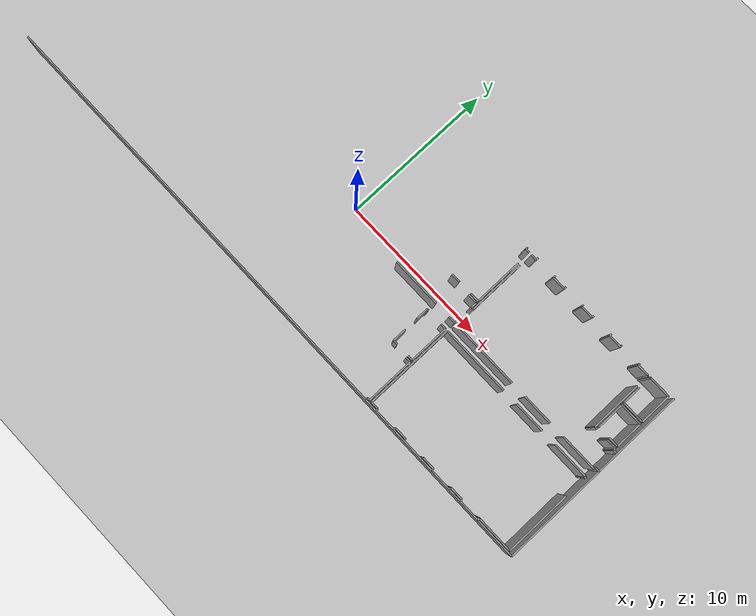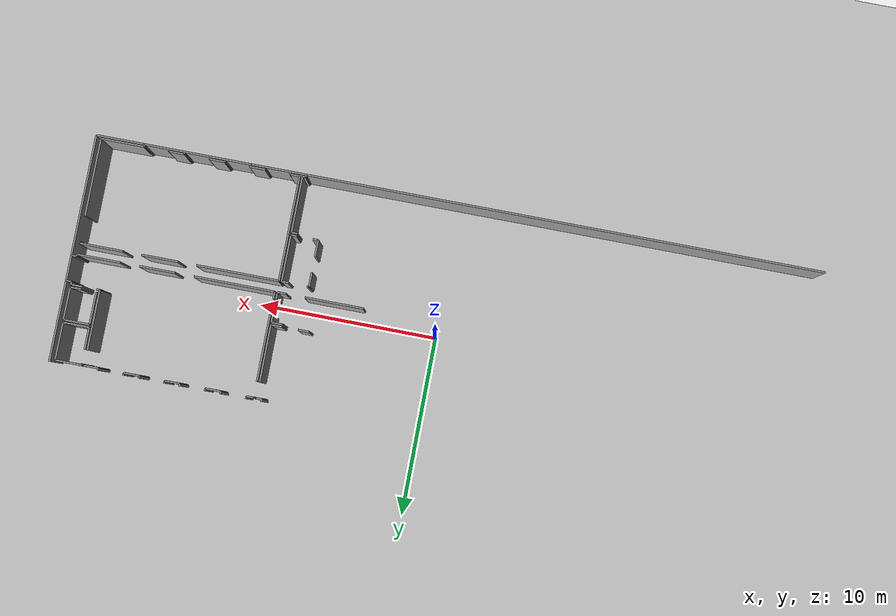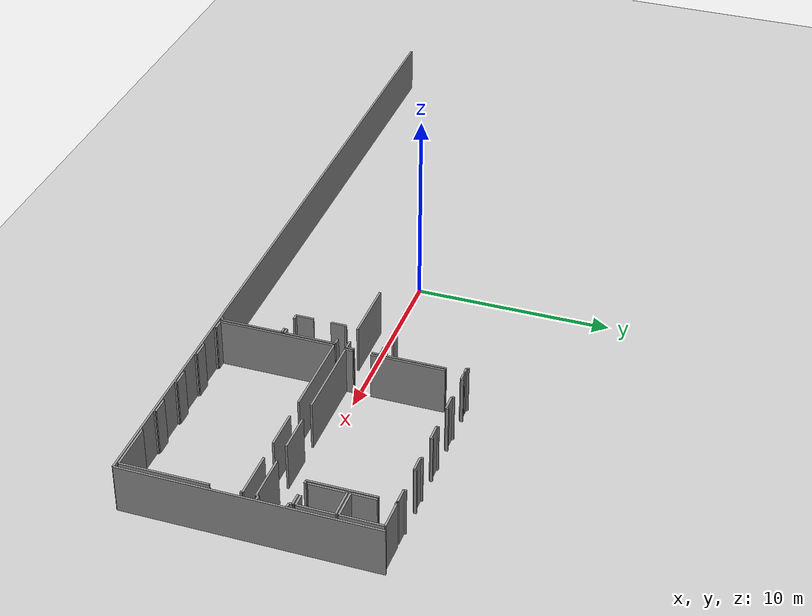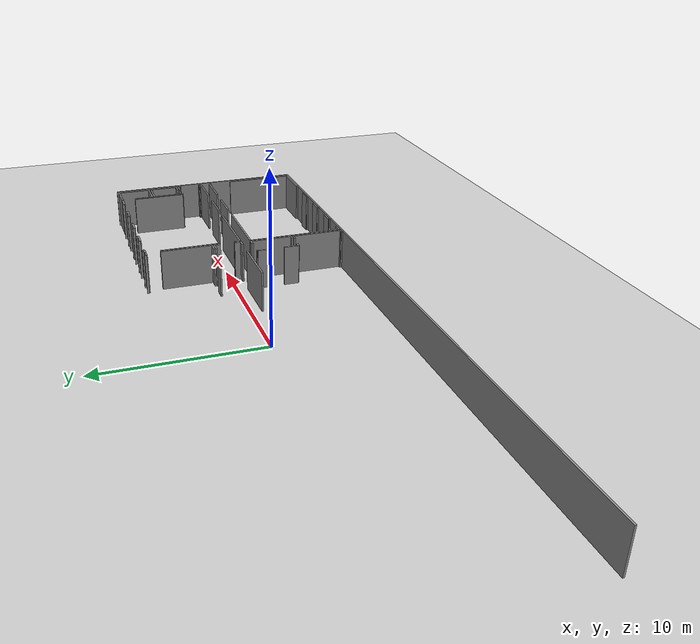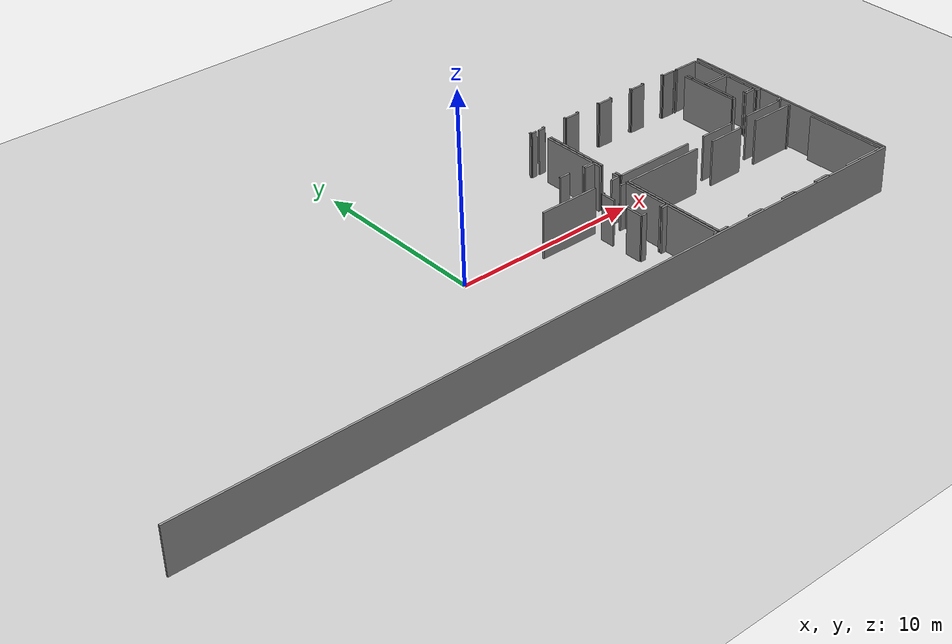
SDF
<sdf version="1.6">
 <world name="default">
  <model name="ground_plane">
   <static>1</static>
   <link name="link">
    <collision name="collision">
     <geometry><plane><normal>0 0 1</normal><size>100 100</size></plane></geometry>
     <surface><friction><ode><mu>100</mu><mu2>50</mu2></ode></friction></surface>
    </collision>
    <visual name="visual">
     <cast_shadows>0</cast_shadows>
     <geometry><plane><normal>0 0 1</normal><size>100 100</size></plane></geometry>
     <material>
      <script><uri>file://media/materials/scripts/gazebo.material</uri><name>Gazebo/Grey</name></script>
     </material>
    </visual>
   </link>
  </model>
  <model name="0510025537_Layout1_PLAN3">
   <static>1</static>
   <link name="Wall_123">
    <collision name="Wall_123_Collision">
     <geometry><box><size>0.400330431467 0.1 2.5</size></box></geometry>
     <pose>0.200165215734 0 1.25 0 0 0</pose>
    </collision>
    <visual name="Wall_123_Visual">
     <pose>0.200165215734 0 1.25 0 0 0</pose>
     <geometry><box><size>0.400330431467 0.1 2.5</size></box></geometry>
     <material>
      <script><uri>file://media/materials/scripts/gazebo.material</uri><name>Gazebo/Grey</name></script>
      <ambient>1 1 1 1</ambient>
     </material>
    </visual>
    <pose>29.1427019127 -5.60791764631 0 0 0 -1.57079632679</pose>
   </link>
   <link name="Wall_124">
    <collision name="Wall_124_Collision">
     <geometry><box><size>0.479633983606 0.1 2.5</size></box></geometry>
     <pose>0.239816991803 0 1.25 0 0 0</pose>
    </collision>
    <visual name="Wall_124_Visual">
     <pose>0.239816991803 0 1.25 0 0 0</pose>
     <geometry><box><size>0.479633983606 0.1 2.5</size></box></geometry>
     <material>
      <script><uri>file://media/materials/scripts/gazebo.material</uri><name>Gazebo/Grey</name></script>
      <ambient>1 1 1 1</ambient>
     </material>
    </visual>
    <pose>29.1427019127 -6.00824807778 0 0 0 3.14159265359</pose>
   </link>
   <link name="Wall_125">
    <collision name="Wall_125_Collision">
     <geometry><box><size>3.24966639131 0.1 2.5</size></box></geometry>
     <pose>1.62483319565 0 1.25 0 0 0</pose>
    </collision>
    <visual name="Wall_125_Visual">
     <pose>1.62483319565 0 1.25 0 0 0</pose>
     <geometry><box><size>3.24966639131 0.1 2.5</size></box></geometry>
     <material>
      <script><uri>file://media/materials/scripts/gazebo.material</uri><name>Gazebo/Grey</name></script>
      <ambient>1 1 1 1</ambient>
     </material>
    </visual>
    <pose>27.6212556396 -6.00824807778 0 0 0 3.14159265359</pose>
   </link>
   <link name="Wall_141">
    <collision name="Wall_141_Collision">
     <geometry><box><size>0.629916756688 0.1 2.5</size></box></geometry>
     <pose>0.314958378344 0 1.25 0 0 0</pose>
    </collision>
    <visual name="Wall_141_Visual">
     <pose>0.314958378344 0 1.25 0 0 0</pose>
     <geometry><box><size>0.629916756688 0.1 2.5</size></box></geometry>
     <material>
      <script><uri>file://media/materials/scripts/gazebo.material</uri><name>Gazebo/Grey</name></script>
      <ambient>1 1 1 1</ambient>
     </material>
    </visual>
    <pose>28.5210459427 -4.32654254305 0 0 0 0.0</pose>
   </link>
   <link name="Wall_142">
    <collision name="Wall_142_Collision">
     <geometry><box><size>0.403274551538 0.1 2.5</size></box></geometry>
     <pose>0.201637275769 0 1.25 0 0 0</pose>
    </collision>
    <visual name="Wall_142_Visual">
     <pose>0.201637275769 0 1.25 0 0 0</pose>
     <geometry><box><size>0.403274551538 0.1 2.5</size></box></geometry>
     <material>
      <script><uri>file://media/materials/scripts/gazebo.material</uri><name>Gazebo/Grey</name></script>
      <ambient>1 1 1 1</ambient>
     </material>
    </visual>
    <pose>29.1509626994 -4.32654254305 0 0 0 -1.59128203429</pose>
   </link>
   <link name="Wall_192">
    <collision name="Wall_192_Collision">
     <geometry><box><size>0.621274702929 0.1 2.5</size></box></geometry>
     <pose>0.310637351465 0 1.25 0 0 0</pose>
    </collision>
    <visual name="Wall_192_Visual">
     <pose>0.310637351465 0 1.25 0 0 0</pose>
     <geometry><box><size>0.621274702929 0.1 2.5</size></box></geometry>
     <material>
      <script><uri>file://media/materials/scripts/gazebo.material</uri><name>Gazebo/Grey</name></script>
      <ambient>1 1 1 1</ambient>
     </material>
    </visual>
    <pose>29.1489928195 -4.20485480079 0 0 0 3.14159265359</pose>
   </link>
   <link name="Wall_193">
    <collision name="Wall_193_Collision">
     <geometry><box><size>0.601639448434 0.1 2.5</size></box></geometry>
     <pose>0.300819724217 0 1.25 0 0 0</pose>
    </collision>
    <visual name="Wall_193_Visual">
     <pose>0.300819724217 0 1.25 0 0 0</pose>
     <geometry><box><size>0.601639448434 0.1 2.5</size></box></geometry>
     <material>
      <script><uri>file://media/materials/scripts/gazebo.material</uri><name>Gazebo/Grey</name></script>
      <ambient>1 1 1 1</ambient>
     </material>
    </visual>
    <pose>27.6344728983 -4.20485480079 0 0 0 3.14159265359</pose>
   </link>
   <link name="Wall_197">
    <collision name="Wall_197_Collision">
     <geometry><box><size>0.132128105738 0.1 2.5</size></box></geometry>
     <pose>0.066064052869 0 1.25 0 0 0</pose>
    </collision>
    <visual name="Wall_197_Visual">
     <pose>0.066064052869 0 1.25 0 0 0</pose>
     <geometry><box><size>0.132128105738 0.1 2.5</size></box></geometry>
     <material>
      <script><uri>file://media/materials/scripts/gazebo.material</uri><name>Gazebo/Grey</name></script>
      <ambient>1 1 1 1</ambient>
     </material>
    </visual>
    <pose>28.8434708013 -0.00852767363538 0 0 0 -1.57079632679</pose>
   </link>
   <link name="Wall_198">
    <collision name="Wall_198_Collision">
     <geometry><box><size>0.296689330876 0.1 2.5</size></box></geometry>
     <pose>0.148344665438 0 1.25 0 0 0</pose>
    </collision>
    <visual name="Wall_198_Visual">
     <pose>0.148344665438 0 1.25 0 0 0</pose>
     <geometry><box><size>0.296689330876 0.1 2.5</size></box></geometry>
     <material>
      <script><uri>file://media/materials/scripts/gazebo.material</uri><name>Gazebo/Grey</name></script>
      <ambient>1 1 1 1</ambient>
     </material>
    </visual>
    <pose>28.8434708013 -0.140655779373 0 0 0 0.0</pose>
   </link>
   <link name="Wall_199">
    <collision name="Wall_199_Collision">
     <geometry><box><size>3.17810212601 0.1 2.5</size></box></geometry>
     <pose>1.58905106301 0 1.25 0 0 0</pose>
    </collision>
    <visual name="Wall_199_Visual">
     <pose>1.58905106301 0 1.25 0 0 0</pose>
     <geometry><box><size>3.17810212601 0.1 2.5</size></box></geometry>
     <material>
      <script><uri>file://media/materials/scripts/gazebo.material</uri><name>Gazebo/Grey</name></script>
      <ambient>1 1 1 1</ambient>
     </material>
    </visual>
    <pose>29.1401601322 -1.02676494885 0 0 0 -1.56801708991</pose>
   </link>
   <link name="Wall_200">
    <collision name="Wall_200_Collision">
     <geometry><box><size>0.291987036919 0.1 2.5</size></box></geometry>
     <pose>0.14599351846 0 1.25 0 0 0</pose>
    </collision>
    <visual name="Wall_200_Visual">
     <pose>0.14599351846 0 1.25 0 0 0</pose>
     <geometry><box><size>0.291987036919 0.1 2.5</size></box></geometry>
     <material>
      <script><uri>file://media/materials/scripts/gazebo.material</uri><name>Gazebo/Grey</name></script>
      <ambient>1 1 1 1</ambient>
     </material>
    </visual>
    <pose>40.5779182818 -5.8933595984 0 0 0 3.14159265359</pose>
   </link>
   <link name="Wall_201">
    <collision name="Wall_201_Collision">
     <geometry><box><size>0.112791510453 0.1 2.5</size></box></geometry>
     <pose>0.0563957552265 0 1.25 0 0 0</pose>
    </collision>
    <visual name="Wall_201_Visual">
     <pose>0.0563957552265 0 1.25 0 0 0</pose>
     <geometry><box><size>0.112791510453 0.1 2.5</size></box></geometry>
     <material>
      <script><uri>file://media/materials/scripts/gazebo.material</uri><name>Gazebo/Grey</name></script>
      <ambient>1 1 1 1</ambient>
     </material>
    </visual>
    <pose>40.2859312448 -5.8933595984 0 0 0 -1.57079632679</pose>
   </link>
   <link name="Wall_202">
    <collision name="Wall_202_Collision">
     <geometry><box><size>2.40242740039 0.1 2.5</size></box></geometry>
     <pose>1.2012137002 0 1.25 0 0 0</pose>
    </collision>
    <visual name="Wall_202_Visual">
     <pose>1.2012137002 0 1.25 0 0 0</pose>
     <geometry><box><size>2.40242740039 0.1 2.5</size></box></geometry>
     <material>
      <script><uri>file://media/materials/scripts/gazebo.material</uri><name>Gazebo/Grey</name></script>
      <ambient>1 1 1 1</ambient>
     </material>
    </visual>
    <pose>40.2859312448 -6.00615110885 0 0 0 3.14159265359</pose>
   </link>
   <link name="Wall_203">
    <collision name="Wall_203_Collision">
     <geometry><box><size>1.98398678274 0.1 2.5</size></box></geometry>
     <pose>0.991993391371 0 1.25 0 0 0</pose>
    </collision>
    <visual name="Wall_203_Visual">
     <pose>0.991993391371 0 1.25 0 0 0</pose>
     <geometry><box><size>1.98398678274 0.1 2.5</size></box></geometry>
     <material>
      <script><uri>file://media/materials/scripts/gazebo.material</uri><name>Gazebo/Grey</name></script>
      <ambient>1 1 1 1</ambient>
     </material>
    </visual>
    <pose>36.8153205821 -6.00615110885 0 0 0 3.14159265359</pose>
   </link>
   <link name="Wall_204">
    <collision name="Wall_204_Collision">
     <geometry><box><size>4.48624261295 0.1 2.5</size></box></geometry>
     <pose>2.24312130648 0 1.25 0 0 0</pose>
    </collision>
    <visual name="Wall_204_Visual">
     <pose>2.24312130648 0 1.25 0 0 0</pose>
     <geometry><box><size>4.48624261295 0.1 2.5</size></box></geometry>
     <material>
      <script><uri>file://media/materials/scripts/gazebo.material</uri><name>Gazebo/Grey</name></script>
      <ambient>1 1 1 1</ambient>
     </material>
    </visual>
    <pose>33.7784012201 -6.00615110885 0 0 0 3.14159265359</pose>
   </link>
   <link name="Wall_205">
    <collision name="Wall_205_Collision">
     <geometry><box><size>0.385524559954 0.1 2.5</size></box></geometry>
     <pose>0.192762279977 0 1.25 0 0 0</pose>
    </collision>
    <visual name="Wall_205_Visual">
     <pose>0.192762279977 0 1.25 0 0 0</pose>
     <geometry><box><size>0.385524559954 0.1 2.5</size></box></geometry>
     <material>
      <script><uri>file://media/materials/scripts/gazebo.material</uri><name>Gazebo/Grey</name></script>
      <ambient>1 1 1 1</ambient>
     </material>
    </visual>
    <pose>29.2921586071 -6.00615110885 0 0 0 1.57079632679</pose>
   </link>
   <link name="Wall_206">
    <collision name="Wall_206_Collision">
     <geometry><box><size>3.69760437186 0.1 2.5</size></box></geometry>
     <pose>1.84880218593 0 1.25 0 0 0</pose>
    </collision>
    <visual name="Wall_206_Visual">
     <pose>1.84880218593 0 1.25 0 0 0</pose>
     <geometry><box><size>3.69760437186 0.1 2.5</size></box></geometry>
     <material>
      <script><uri>file://media/materials/scripts/gazebo.material</uri><name>Gazebo/Grey</name></script>
      <ambient>1 1 1 1</ambient>
     </material>
    </visual>
    <pose>29.2921586071 -4.73068564529 0 0 0 1.57079632679</pose>
   </link>
   <link name="Wall_207">
    <collision name="Wall_207_Collision">
     <geometry><box><size>0.401029421109 0.1 2.5</size></box></geometry>
     <pose>0.200514710555 0 1.25 0 0 0</pose>
    </collision>
    <visual name="Wall_207_Visual">
     <pose>0.200514710555 0 1.25 0 0 0</pose>
     <geometry><box><size>0.401029421109 0.1 2.5</size></box></geometry>
     <material>
      <script><uri>file://media/materials/scripts/gazebo.material</uri><name>Gazebo/Grey</name></script>
      <ambient>1 1 1 1</ambient>
     </material>
    </visual>
    <pose>29.2921586071 -0.139003622037 0 0 0 0.0</pose>
   </link>
   <link name="Wall_208">
    <collision name="Wall_208_Collision">
     <geometry><box><size>0.139003622037 0.1 2.5</size></box></geometry>
     <pose>0.0695018110186 0 1.25 0 0 0</pose>
    </collision>
    <visual name="Wall_208_Visual">
     <pose>0.0695018110186 0 1.25 0 0 0</pose>
     <geometry><box><size>0.139003622037 0.1 2.5</size></box></geometry>
     <material>
      <script><uri>file://media/materials/scripts/gazebo.material</uri><name>Gazebo/Grey</name></script>
      <ambient>1 1 1 1</ambient>
     </material>
    </visual>
    <pose>29.6931880282 -0.139003622037 0 0 0 1.57079632679</pose>
   </link>
   <link name="Wall_209">
    <collision name="Wall_209_Collision">
     <geometry><box><size>0.139003622037 0.1 2.5</size></box></geometry>
     <pose>0.0695018110186 0 1.25 0 0 0</pose>
    </collision>
    <visual name="Wall_209_Visual">
     <pose>0.0695018110186 0 1.25 0 0 0</pose>
     <geometry><box><size>0.139003622037 0.1 2.5</size></box></geometry>
     <material>
      <script><uri>file://media/materials/scripts/gazebo.material</uri><name>Gazebo/Grey</name></script>
      <ambient>1 1 1 1</ambient>
     </material>
    </visual>
    <pose>31.0990468323 -0.0 0 0 0 -1.57079632679</pose>
   </link>
   <link name="Wall_210">
    <collision name="Wall_210_Collision">
     <geometry><box><size>0.862489674017 0.1 2.5</size></box></geometry>
     <pose>0.431244837008 0 1.25 0 0 0</pose>
    </collision>
    <visual name="Wall_210_Visual">
     <pose>0.431244837008 0 1.25 0 0 0</pose>
     <geometry><box><size>0.862489674017 0.1 2.5</size></box></geometry>
     <material>
      <script><uri>file://media/materials/scripts/gazebo.material</uri><name>Gazebo/Grey</name></script>
      <ambient>1 1 1 1</ambient>
     </material>
    </visual>
    <pose>31.0990468323 -0.139003622037 0 0 0 0.0</pose>
   </link>
   <link name="Wall_211">
    <collision name="Wall_211_Collision">
     <geometry><box><size>0.132687297452 0.1 2.5</size></box></geometry>
     <pose>0.0663436487259 0 1.25 0 0 0</pose>
    </collision>
    <visual name="Wall_211_Visual">
     <pose>0.0663436487259 0 1.25 0 0 0</pose>
     <geometry><box><size>0.132687297452 0.1 2.5</size></box></geometry>
     <material>
      <script><uri>file://media/materials/scripts/gazebo.material</uri><name>Gazebo/Grey</name></script>
      <ambient>1 1 1 1</ambient>
     </material>
    </visual>
    <pose>31.9615365063 -0.139003622037 0 0 0 1.57079632679</pose>
   </link>
   <link name="Wall_212">
    <collision name="Wall_212_Collision">
     <geometry><box><size>0.126370972866 0.1 2.5</size></box></geometry>
     <pose>0.0631854864332 0 1.25 0 0 0</pose>
    </collision>
    <visual name="Wall_212_Visual">
     <pose>0.0631854864332 0 1.25 0 0 0</pose>
     <geometry><box><size>0.126370972866 0.1 2.5</size></box></geometry>
     <material>
      <script><uri>file://media/materials/scripts/gazebo.material</uri><name>Gazebo/Grey</name></script>
      <ambient>1 1 1 1</ambient>
     </material>
    </visual>
    <pose>33.3705725361 -0.00631632458537 0 0 0 -1.57079632679</pose>
   </link>
   <link name="Wall_213">
    <collision name="Wall_213_Collision">
     <geometry><box><size>0.840376183517 0.1 2.5</size></box></geometry>
     <pose>0.420188091758 0 1.25 0 0 0</pose>
    </collision>
    <visual name="Wall_213_Visual">
     <pose>0.420188091758 0 1.25 0 0 0</pose>
     <geometry><box><size>0.840376183517 0.1 2.5</size></box></geometry>
     <material>
      <script><uri>file://media/materials/scripts/gazebo.material</uri><name>Gazebo/Grey</name></script>
      <ambient>1 1 1 1</ambient>
     </material>
    </visual>
    <pose>33.3705725361 -0.132687297452 0 0 0 0.0</pose>
   </link>
   <link name="Wall_214">
    <collision name="Wall_214_Collision">
     <geometry><box><size>0.126370972866 0.1 2.5</size></box></geometry>
     <pose>0.0631854864332 0 1.25 0 0 0</pose>
    </collision>
    <visual name="Wall_214_Visual">
     <pose>0.0631854864332 0 1.25 0 0 0</pose>
     <geometry><box><size>0.126370972866 0.1 2.5</size></box></geometry>
     <material>
      <script><uri>file://media/materials/scripts/gazebo.material</uri><name>Gazebo/Grey</name></script>
      <ambient>1 1 1 1</ambient>
     </material>
    </visual>
    <pose>34.2109487196 -0.132687297452 0 0 0 1.57079632679</pose>
   </link>
   <link name="Wall_215">
    <collision name="Wall_215_Collision">
     <geometry><box><size>0.135851814196 0.1 2.5</size></box></geometry>
     <pose>0.0679259070979 0 1.25 0 0 0</pose>
    </collision>
    <visual name="Wall_215_Visual">
     <pose>0.0679259070979 0 1.25 0 0 0</pose>
     <geometry><box><size>0.135851814196 0.1 2.5</size></box></geometry>
     <material>
      <script><uri>file://media/materials/scripts/gazebo.material</uri><name>Gazebo/Grey</name></script>
      <ambient>1 1 1 1</ambient>
     </material>
    </visual>
    <pose>35.623161975 -0.00631632458537 0 0 0 -1.57079632679</pose>
   </link>
   <link name="Wall_216">
    <collision name="Wall_216_Collision">
     <geometry><box><size>0.856135222724 0.1 2.5</size></box></geometry>
     <pose>0.428067611362 0 1.25 0 0 0</pose>
    </collision>
    <visual name="Wall_216_Visual">
     <pose>0.428067611362 0 1.25 0 0 0</pose>
     <geometry><box><size>0.856135222724 0.1 2.5</size></box></geometry>
     <material>
      <script><uri>file://media/materials/scripts/gazebo.material</uri><name>Gazebo/Grey</name></script>
      <ambient>1 1 1 1</ambient>
     </material>
    </visual>
    <pose>35.623161975 -0.142168138781 0 0 0 0.0</pose>
   </link>
   <link name="Wall_217">
    <collision name="Wall_217_Collision">
     <geometry><box><size>0.132693651903 0.1 2.5</size></box></geometry>
     <pose>0.0663468259516 0 1.25 0 0 0</pose>
    </collision>
    <visual name="Wall_217_Visual">
     <pose>0.0663468259516 0 1.25 0 0 0</pose>
     <geometry><box><size>0.132693651903 0.1 2.5</size></box></geometry>
     <material>
      <script><uri>file://media/materials/scripts/gazebo.material</uri><name>Gazebo/Grey</name></script>
      <ambient>1 1 1 1</ambient>
     </material>
    </visual>
    <pose>36.4792971977 -0.142168138781 0 0 0 1.57079632679</pose>
   </link>
   <link name="Wall_218">
    <collision name="Wall_218_Collision">
     <geometry><box><size>0.129846857724 0.1 2.5</size></box></geometry>
     <pose>0.0649234288619 0 1.25 0 0 0</pose>
    </collision>
    <visual name="Wall_218_Visual">
     <pose>0.0649234288619 0 1.25 0 0 0</pose>
     <geometry><box><size>0.129846857724 0.1 2.5</size></box></geometry>
     <material>
      <script><uri>file://media/materials/scripts/gazebo.material</uri><name>Gazebo/Grey</name></script>
      <ambient>1 1 1 1</ambient>
     </material>
    </visual>
    <pose>37.8904301964 -0.00947448687806 0 0 0 -1.57079632679</pose>
   </link>
   <link name="Wall_219">
    <collision name="Wall_219_Collision">
     <geometry><box><size>0.781089152952 0.1 2.5</size></box></geometry>
     <pose>0.390544576476 0 1.25 0 0 0</pose>
    </collision>
    <visual name="Wall_219_Visual">
     <pose>0.390544576476 0 1.25 0 0 0</pose>
     <geometry><box><size>0.781089152952 0.1 2.5</size></box></geometry>
     <material>
      <script><uri>file://media/materials/scripts/gazebo.material</uri><name>Gazebo/Grey</name></script>
      <ambient>1 1 1 1</ambient>
     </material>
    </visual>
    <pose>37.8904301964 -0.139321344602 0 0 0 0.0</pose>
   </link>
   <link name="Wall_220">
    <collision name="Wall_220_Collision">
     <geometry><box><size>0.0533900997649 0.1 2.5</size></box></geometry>
     <pose>0.0266950498824 0 1.25 0 0 0</pose>
    </collision>
    <visual name="Wall_220_Visual">
     <pose>0.0266950498824 0 1.25 0 0 0</pose>
     <geometry><box><size>0.0533900997649 0.1 2.5</size></box></geometry>
     <material>
      <script><uri>file://media/materials/scripts/gazebo.material</uri><name>Gazebo/Grey</name></script>
      <ambient>1 1 1 1</ambient>
     </material>
    </visual>
    <pose>38.6715193493 -0.139321344602 0 0 0 -1.57079632679</pose>
   </link>
   <link name="Wall_221">
    <collision name="Wall_221_Collision">
     <geometry><box><size>3.33731333799 0.1 2.5</size></box></geometry>
     <pose>1.668656669 0 1.25 0 0 0</pose>
    </collision>
    <visual name="Wall_221_Visual">
     <pose>1.668656669 0 1.25 0 0 0</pose>
     <geometry><box><size>3.33731333799 0.1 2.5</size></box></geometry>
     <material>
      <script><uri>file://media/materials/scripts/gazebo.material</uri><name>Gazebo/Grey</name></script>
      <ambient>1 1 1 1</ambient>
     </material>
    </visual>
    <pose>38.6715193493 -0.98948338311 0 0 0 -1.57079632679</pose>
   </link>
   <link name="Wall_222">
    <collision name="Wall_222_Collision">
     <geometry><box><size>0.181927940522 0.1 2.5</size></box></geometry>
     <pose>0.0909639702612 0 1.25 0 0 0</pose>
    </collision>
    <visual name="Wall_222_Visual">
     <pose>0.0909639702612 0 1.25 0 0 0</pose>
     <geometry><box><size>0.181927940522 0.1 2.5</size></box></geometry>
     <material>
      <script><uri>file://media/materials/scripts/gazebo.material</uri><name>Gazebo/Grey</name></script>
      <ambient>1 1 1 1</ambient>
     </material>
    </visual>
    <pose>38.6715193493 -4.3267967211 0 0 0 0.0</pose>
   </link>
   <link name="Wall_223">
    <collision name="Wall_223_Collision">
     <geometry><box><size>0.639448433628 0.1 2.5</size></box></geometry>
     <pose>0.319724216814 0 1.25 0 0 0</pose>
    </collision>
    <visual name="Wall_223_Visual">
     <pose>0.319724216814 0 1.25 0 0 0</pose>
     <geometry><box><size>0.639448433628 0.1 2.5</size></box></geometry>
     <material>
      <script><uri>file://media/materials/scripts/gazebo.material</uri><name>Gazebo/Grey</name></script>
      <ambient>1 1 1 1</ambient>
     </material>
    </visual>
    <pose>39.6415898837 -4.3267967211 0 0 0 0.0</pose>
   </link>
   <link name="Wall_224">
    <collision name="Wall_224_Collision">
     <geometry><box><size>0.157781025608 0.1 2.5</size></box></geometry>
     <pose>0.0788905128042 0 1.25 0 0 0</pose>
    </collision>
    <visual name="Wall_224_Visual">
     <pose>0.0788905128042 0 1.25 0 0 0</pose>
     <geometry><box><size>0.157781025608 0.1 2.5</size></box></geometry>
     <material>
      <script><uri>file://media/materials/scripts/gazebo.material</uri><name>Gazebo/Grey</name></script>
      <ambient>1 1 1 1</ambient>
     </material>
    </visual>
    <pose>40.2810383173 -4.3267967211 0 0 0 -1.57079632679</pose>
   </link>
   <link name="Wall_225">
    <collision name="Wall_225_Collision">
     <geometry><box><size>0.296979514849 0.1 2.5</size></box></geometry>
     <pose>0.148489757425 0 1.25 0 0 0</pose>
    </collision>
    <visual name="Wall_225_Visual">
     <pose>0.148489757425 0 1.25 0 0 0</pose>
     <geometry><box><size>0.296979514849 0.1 2.5</size></box></geometry>
     <material>
      <script><uri>file://media/materials/scripts/gazebo.material</uri><name>Gazebo/Grey</name></script>
      <ambient>1 1 1 1</ambient>
     </material>
    </visual>
    <pose>40.2810383173 -4.48457774671 0 0 0 -0.0258931842949</pose>
   </link>
   <link name="Wall_253">
    <collision name="Wall_253_Collision">
     <geometry><box><size>0.331956535553 0.1 2.5</size></box></geometry>
     <pose>0.165978267777 0 1.25 0 0 0</pose>
    </collision>
    <visual name="Wall_253_Visual">
     <pose>0.165978267777 0 1.25 0 0 0</pose>
     <geometry><box><size>0.331956535553 0.1 2.5</size></box></geometry>
     <material>
      <script><uri>file://media/materials/scripts/gazebo.material</uri><name>Gazebo/Grey</name></script>
      <ambient>1 1 1 1</ambient>
     </material>
    </visual>
    <pose>29.0299739467 -9.2191523162 0 0 0 3.14159265359</pose>
   </link>
   <link name="Wall_254">
    <collision name="Wall_254_Collision">
     <geometry><box><size>0.298405032725 0.1 2.5</size></box></geometry>
     <pose>0.149202516363 0 1.25 0 0 0</pose>
    </collision>
    <visual name="Wall_254_Visual">
     <pose>0.149202516363 0 1.25 0 0 0</pose>
     <geometry><box><size>0.298405032725 0.1 2.5</size></box></geometry>
     <material>
      <script><uri>file://media/materials/scripts/gazebo.material</uri><name>Gazebo/Grey</name></script>
      <ambient>1 1 1 1</ambient>
     </material>
    </visual>
    <pose>27.8082671411 -9.2191523162 0 0 0 3.14159265359</pose>
   </link>
   <link name="Wall_255">
    <collision name="Wall_255_Collision">
     <geometry><box><size>0.914214907543 0.1 2.5</size></box></geometry>
     <pose>0.457107453771 0 1.25 0 0 0</pose>
    </collision>
    <visual name="Wall_255_Visual">
     <pose>0.457107453771 0 1.25 0 0 0</pose>
     <geometry><box><size>0.914214907543 0.1 2.5</size></box></geometry>
     <material>
      <script><uri>file://media/materials/scripts/gazebo.material</uri><name>Gazebo/Grey</name></script>
      <ambient>1 1 1 1</ambient>
     </material>
    </visual>
    <pose>27.5098621084 -9.2191523162 0 0 0 1.57079632679</pose>
   </link>
   <link name="Wall_256">
    <collision name="Wall_256_Collision">
     <geometry><box><size>0.792654254305 0.1 2.5</size></box></geometry>
     <pose>0.396327127153 0 1.25 0 0 0</pose>
    </collision>
    <visual name="Wall_256_Visual">
     <pose>0.396327127153 0 1.25 0 0 0</pose>
     <geometry><box><size>0.792654254305 0.1 2.5</size></box></geometry>
     <material>
      <script><uri>file://media/materials/scripts/gazebo.material</uri><name>Gazebo/Grey</name></script>
      <ambient>1 1 1 1</ambient>
     </material>
    </visual>
    <pose>27.5098621084 -7.42084260024 0 0 0 1.57079632679</pose>
   </link>
   <link name="Wall_257">
    <collision name="Wall_257_Collision">
     <geometry><box><size>0.113172777531 0.1 2.5</size></box></geometry>
     <pose>0.0565863887653 0 1.25 0 0 0</pose>
    </collision>
    <visual name="Wall_257_Visual">
     <pose>0.0565863887653 0 1.25 0 0 0</pose>
     <geometry><box><size>0.113172777531 0.1 2.5</size></box></geometry>
     <material>
      <script><uri>file://media/materials/scripts/gazebo.material</uri><name>Gazebo/Grey</name></script>
      <ambient>1 1 1 1</ambient>
     </material>
    </visual>
    <pose>27.5098621084 -6.62818834594 0 0 0 0.0</pose>
   </link>
   <link name="Wall_258">
    <collision name="Wall_258_Collision">
     <geometry><box><size>0.375738704963 0.1 2.5</size></box></geometry>
     <pose>0.187869352481 0 1.25 0 0 0</pose>
    </collision>
    <visual name="Wall_258_Visual">
     <pose>0.187869352481 0 1.25 0 0 0</pose>
     <geometry><box><size>0.375738704963 0.1 2.5</size></box></geometry>
     <material>
      <script><uri>file://media/materials/scripts/gazebo.material</uri><name>Gazebo/Grey</name></script>
      <ambient>1 1 1 1</ambient>
     </material>
    </visual>
    <pose>28.6536633412 -6.62818834594 0 0 0 0.0</pose>
   </link>
   <link name="Wall_259">
    <collision name="Wall_259_Collision">
     <geometry><box><size>2.59096403338 0.1 2.5</size></box></geometry>
     <pose>1.29548201669 0 1.25 0 0 0</pose>
    </collision>
    <visual name="Wall_259_Visual">
     <pose>1.29548201669 0 1.25 0 0 0</pose>
     <geometry><box><size>2.59096403338 0.1 2.5</size></box></geometry>
     <material>
      <script><uri>file://media/materials/scripts/gazebo.material</uri><name>Gazebo/Grey</name></script>
      <ambient>1 1 1 1</ambient>
     </material>
    </visual>
    <pose>29.0294020461 -6.62818834594 0 0 0 -1.5705755979</pose>
   </link>
   <link name="Wall_265">
    <collision name="Wall_265_Collision">
     <geometry><box><size>0.184215542988 0.1 2.5</size></box></geometry>
     <pose>0.0921077714939 0 1.25 0 0 0</pose>
    </collision>
    <visual name="Wall_265_Visual">
     <pose>0.0921077714939 0 1.25 0 0 0</pose>
     <geometry><box><size>0.184215542988 0.1 2.5</size></box></geometry>
     <material>
      <script><uri>file://media/materials/scripts/gazebo.material</uri><name>Gazebo/Grey</name></script>
      <ambient>1 1 1 1</ambient>
     </material>
    </visual>
    <pose>29.0316261041 -12.5088517507 0 0 0 3.14159265359</pose>
   </link>
   <link name="Wall_266">
    <collision name="Wall_266_Collision">
     <geometry><box><size>0.121306475186 0.1 2.5</size></box></geometry>
     <pose>0.0606532375929 0 1.25 0 0 0</pose>
    </collision>
    <visual name="Wall_266_Visual">
     <pose>0.0606532375929 0 1.25 0 0 0</pose>
     <geometry><box><size>0.121306475186 0.1 2.5</size></box></geometry>
     <material>
      <script><uri>file://media/materials/scripts/gazebo.material</uri><name>Gazebo/Grey</name></script>
      <ambient>1 1 1 1</ambient>
     </material>
    </visual>
    <pose>28.8474105611 -12.5088517507 0 0 0 -1.57079632679</pose>
   </link>
   <link name="Wall_274">
    <collision name="Wall_274_Collision">
     <geometry><box><size>0.341170489928 0.1 2.5</size></box></geometry>
     <pose>0.170585244964 0 1.25 0 0 0</pose>
    </collision>
    <visual name="Wall_274_Visual">
     <pose>0.170585244964 0 1.25 0 0 0</pose>
     <geometry><box><size>0.341170489928 0.1 2.5</size></box></geometry>
     <material>
      <script><uri>file://media/materials/scripts/gazebo.material</uri><name>Gazebo/Grey</name></script>
      <ambient>1 1 1 1</ambient>
     </material>
    </visual>
    <pose>28.6863252208 -9.36397026117 0 0 0 0.0</pose>
   </link>
   <link name="Wall_275">
    <collision name="Wall_275_Collision">
     <geometry><box><size>3.14488420185 0.1 2.5</size></box></geometry>
     <pose>1.57244210092 0 1.25 0 0 0</pose>
    </collision>
    <visual name="Wall_275_Visual">
     <pose>1.57244210092 0 1.25 0 0 0</pose>
     <geometry><box><size>3.14488420185 0.1 2.5</size></box></geometry>
     <material>
      <script><uri>file://media/materials/scripts/gazebo.material</uri><name>Gazebo/Grey</name></script>
      <ambient>1 1 1 1</ambient>
     </material>
    </visual>
    <pose>29.0274957107 -9.36397026117 0 0 0 -1.56948295744</pose>
   </link>
   <link name="Wall_276">
    <collision name="Wall_276_Collision">
     <geometry><box><size>2.40363474614 0.1 2.5</size></box></geometry>
     <pose>1.20181737307 0 1.25 0 0 0</pose>
    </collision>
    <visual name="Wall_276_Visual">
     <pose>1.20181737307 0 1.25 0 0 0</pose>
     <geometry><box><size>2.40363474614 0.1 2.5</size></box></geometry>
     <material>
      <script><uri>file://media/materials/scripts/gazebo.material</uri><name>Gazebo/Grey</name></script>
      <ambient>1 1 1 1</ambient>
     </material>
    </visual>
    <pose>40.2906335388 -12.51546038 0 0 0 3.14159265359</pose>
   </link>
   <link name="Wall_277">
    <collision name="Wall_277_Collision">
     <geometry><box><size>0.121560653238 0.1 2.5</size></box></geometry>
     <pose>0.0607803266188 0 1.25 0 0 0</pose>
    </collision>
    <visual name="Wall_277_Visual">
     <pose>0.0607803266188 0 1.25 0 0 0</pose>
     <geometry><box><size>0.121560653238 0.1 2.5</size></box></geometry>
     <material>
      <script><uri>file://media/materials/scripts/gazebo.material</uri><name>Gazebo/Grey</name></script>
      <ambient>1 1 1 1</ambient>
     </material>
    </visual>
    <pose>37.8869987927 -12.51546038 0 0 0 -1.57079632679</pose>
   </link>
   <link name="Wall_278">
    <collision name="Wall_278_Collision">
     <geometry><box><size>0.125691046578 0.1 2.5</size></box></geometry>
     <pose>0.0628455232891 0 1.25 0 0 0</pose>
    </collision>
    <visual name="Wall_278_Visual">
     <pose>0.0628455232891 0 1.25 0 0 0</pose>
     <geometry><box><size>0.125691046578 0.1 2.5</size></box></geometry>
     <material>
      <script><uri>file://media/materials/scripts/gazebo.material</uri><name>Gazebo/Grey</name></script>
      <ambient>1 1 1 1</ambient>
     </material>
    </visual>
    <pose>36.480695177 -12.6370210332 0 0 0 1.57079632679</pose>
   </link>
   <link name="Wall_279">
    <collision name="Wall_279_Collision">
     <geometry><box><size>0.854355976361 0.1 2.5</size></box></geometry>
     <pose>0.427177988181 0 1.25 0 0 0</pose>
    </collision>
    <visual name="Wall_279_Visual">
     <pose>0.427177988181 0 1.25 0 0 0</pose>
     <geometry><box><size>0.854355976361 0.1 2.5</size></box></geometry>
     <material>
      <script><uri>file://media/materials/scripts/gazebo.material</uri><name>Gazebo/Grey</name></script>
      <ambient>1 1 1 1</ambient>
     </material>
    </visual>
    <pose>36.480695177 -12.5113299867 0 0 0 3.14159265359</pose>
   </link>
   <link name="Wall_280">
    <collision name="Wall_280_Collision">
     <geometry><box><size>0.12639003622 0.1 2.5</size></box></geometry>
     <pose>0.0631950181102 0 1.25 0 0 0</pose>
    </collision>
    <visual name="Wall_280_Visual">
     <pose>0.0631950181102 0 1.25 0 0 0</pose>
     <geometry><box><size>0.12639003622 0.1 2.5</size></box></geometry>
     <material>
      <script><uri>file://media/materials/scripts/gazebo.material</uri><name>Gazebo/Grey</name></script>
      <ambient>1 1 1 1</ambient>
     </material>
    </visual>
    <pose>35.6263392006 -12.5113299867 0 0 0 -1.57079632679</pose>
   </link>
   <link name="Wall_281">
    <collision name="Wall_281_Collision">
     <geometry><box><size>0.131918408845 0.1 2.5</size></box></geometry>
     <pose>0.0659592044227 0 1.25 0 0 0</pose>
    </collision>
    <visual name="Wall_281_Visual">
     <pose>0.0659592044227 0 1.25 0 0 0</pose>
     <geometry><box><size>0.131918408845 0.1 2.5</size></box></geometry>
     <material>
      <script><uri>file://media/materials/scripts/gazebo.material</uri><name>Gazebo/Grey</name></script>
      <ambient>1 1 1 1</ambient>
     </material>
    </visual>
    <pose>34.2115206202 -12.6377200229 0 0 0 1.57079632679</pose>
   </link>
   <link name="Wall_282">
    <collision name="Wall_282_Collision">
     <geometry><box><size>0.846158734193 0.1 2.5</size></box></geometry>
     <pose>0.423079367097 0 1.25 0 0 0</pose>
    </collision>
    <visual name="Wall_282_Visual">
     <pose>0.423079367097 0 1.25 0 0 0</pose>
     <geometry><box><size>0.846158734193 0.1 2.5</size></box></geometry>
     <material>
      <script><uri>file://media/materials/scripts/gazebo.material</uri><name>Gazebo/Grey</name></script>
      <ambient>1 1 1 1</ambient>
     </material>
    </visual>
    <pose>34.2115206202 -12.505801614 0 0 0 3.14159265359</pose>
   </link>
   <link name="Wall_283">
    <collision name="Wall_283_Collision">
     <geometry><box><size>0.123657622164 0.1 2.5</size></box></geometry>
     <pose>0.0618288110822 0 1.25 0 0 0</pose>
    </collision>
    <visual name="Wall_283_Visual">
     <pose>0.0618288110822 0 1.25 0 0 0</pose>
     <geometry><box><size>0.123657622164 0.1 2.5</size></box></geometry>
     <material>
      <script><uri>file://media/materials/scripts/gazebo.material</uri><name>Gazebo/Grey</name></script>
      <ambient>1 1 1 1</ambient>
     </material>
    </visual>
    <pose>33.365361886 -12.505801614 0 0 0 -1.57079632679</pose>
   </link>
   <link name="Wall_284">
    <collision name="Wall_284_Collision">
     <geometry><box><size>0.123657622164 0.1 2.5</size></box></geometry>
     <pose>0.0618288110822 0 1.25 0 0 0</pose>
    </collision>
    <visual name="Wall_284_Visual">
     <pose>0.0618288110822 0 1.25 0 0 0</pose>
     <geometry><box><size>0.123657622164 0.1 2.5</size></box></geometry>
     <material>
      <script><uri>file://media/materials/scripts/gazebo.material</uri><name>Gazebo/Grey</name></script>
      <ambient>1 1 1 1</ambient>
     </material>
    </visual>
    <pose>31.9560716782 -12.6294592362 0 0 0 1.57079632679</pose>
   </link>
   <link name="Wall_285">
    <collision name="Wall_285_Collision">
     <geometry><box><size>0.843426320137 0.1 2.5</size></box></geometry>
     <pose>0.421713160069 0 1.25 0 0 0</pose>
    </collision>
    <visual name="Wall_285_Visual">
     <pose>0.421713160069 0 1.25 0 0 0</pose>
     <geometry><box><size>0.843426320137 0.1 2.5</size></box></geometry>
     <material>
      <script><uri>file://media/materials/scripts/gazebo.material</uri><name>Gazebo/Grey</name></script>
      <ambient>1 1 1 1</ambient>
     </material>
    </visual>
    <pose>31.9560716782 -12.505801614 0 0 0 3.14159265359</pose>
   </link>
   <link name="Wall_286">
    <collision name="Wall_286_Collision">
     <geometry><box><size>0.120925208108 0.1 2.5</size></box></geometry>
     <pose>0.0604626040541 0 1.25 0 0 0</pose>
    </collision>
    <visual name="Wall_286_Visual">
     <pose>0.0604626040541 0 1.25 0 0 0</pose>
     <geometry><box><size>0.120925208108 0.1 2.5</size></box></geometry>
     <material>
      <script><uri>file://media/materials/scripts/gazebo.material</uri><name>Gazebo/Grey</name></script>
      <ambient>1 1 1 1</ambient>
     </material>
    </visual>
    <pose>31.1126453581 -12.505801614 0 0 0 -1.57079632679</pose>
   </link>
   <link name="Wall_287">
    <collision name="Wall_287_Collision">
     <geometry><box><size>0.129122450276 0.1 2.5</size></box></geometry>
     <pose>0.0645612251382 0 1.25 0 0 0</pose>
    </collision>
    <visual name="Wall_287_Visual">
     <pose>0.0645612251382 0 1.25 0 0 0</pose>
     <geometry><box><size>0.129122450276 0.1 2.5</size></box></geometry>
     <material>
      <script><uri>file://media/materials/scripts/gazebo.material</uri><name>Gazebo/Grey</name></script>
      <ambient>1 1 1 1</ambient>
     </material>
    </visual>
    <pose>29.7006227362 -12.6267268221 0 0 0 1.57079632679</pose>
   </link>
   <link name="Wall_288">
    <collision name="Wall_288_Collision">
     <geometry><box><size>0.516489801106 0.1 2.5</size></box></geometry>
     <pose>0.258244900553 0 1.25 0 0 0</pose>
    </collision>
    <visual name="Wall_288_Visual">
     <pose>0.258244900553 0 1.25 0 0 0</pose>
     <geometry><box><size>0.516489801106 0.1 2.5</size></box></geometry>
     <material>
      <script><uri>file://media/materials/scripts/gazebo.material</uri><name>Gazebo/Grey</name></script>
      <ambient>1 1 1 1</ambient>
     </material>
    </visual>
    <pose>29.7006227362 -12.4976043719 0 0 0 3.14159265359</pose>
   </link>
   <link name="Wall_289">
    <collision name="Wall_289_Collision">
     <geometry><box><size>5.86217195145 0.1 2.5</size></box></geometry>
     <pose>2.93108597573 0 1.25 0 0 0</pose>
    </collision>
    <visual name="Wall_289_Visual">
     <pose>2.93108597573 0 1.25 0 0 0</pose>
     <geometry><box><size>5.86217195145 0.1 2.5</size></box></geometry>
     <material>
      <script><uri>file://media/materials/scripts/gazebo.material</uri><name>Gazebo/Grey</name></script>
      <ambient>1 1 1 1</ambient>
     </material>
    </visual>
    <pose>29.1841329351 -12.4976043719 0 0 0 1.57079632679</pose>
   </link>
   <link name="Wall_290">
    <collision name="Wall_290_Collision">
     <geometry><box><size>4.57533202008 0.1 2.5</size></box></geometry>
     <pose>2.28766601004 0 1.25 0 0 0</pose>
    </collision>
    <visual name="Wall_290_Visual">
     <pose>2.28766601004 0 1.25 0 0 0</pose>
     <geometry><box><size>4.57533202008 0.1 2.5</size></box></geometry>
     <material>
      <script><uri>file://media/materials/scripts/gazebo.material</uri><name>Gazebo/Grey</name></script>
      <ambient>1 1 1 1</ambient>
     </material>
    </visual>
    <pose>29.1841329351 -6.63543242041 0 0 0 0.0</pose>
   </link>
   <link name="Wall_291">
    <collision name="Wall_291_Collision">
     <geometry><box><size>2.01690284044 0.1 2.5</size></box></geometry>
     <pose>1.00845142022 0 1.25 0 0 0</pose>
    </collision>
    <visual name="Wall_291_Visual">
     <pose>1.00845142022 0 1.25 0 0 0</pose>
     <geometry><box><size>2.01690284044 0.1 2.5</size></box></geometry>
     <material>
      <script><uri>file://media/materials/scripts/gazebo.material</uri><name>Gazebo/Grey</name></script>
      <ambient>1 1 1 1</ambient>
     </material>
    </visual>
    <pose>34.8046451039 -6.63543242041 0 0 0 0.0</pose>
   </link>
   <link name="Wall_292">
    <collision name="Wall_292_Collision">
     <geometry><box><size>2.41469149139 0.1 2.5</size></box></geometry>
     <pose>1.20734574569 0 1.25 0 0 0</pose>
    </collision>
    <visual name="Wall_292_Visual">
     <pose>1.20734574569 0 1.25 0 0 0</pose>
     <geometry><box><size>2.41469149139 0.1 2.5</size></box></geometry>
     <material>
      <script><uri>file://media/materials/scripts/gazebo.material</uri><name>Gazebo/Grey</name></script>
      <ambient>1 1 1 1</ambient>
     </material>
    </visual>
    <pose>37.8704136748 -6.63543242041 0 0 0 0.0</pose>
   </link>
   <link name="Wall_293">
    <collision name="Wall_293_Collision">
     <geometry><box><size>0.105801614031 0.1 2.5</size></box></geometry>
     <pose>0.0529008070153 0 1.25 0 0 0</pose>
    </collision>
    <visual name="Wall_293_Visual">
     <pose>0.0529008070153 0 1.25 0 0 0</pose>
     <geometry><box><size>0.105801614031 0.1 2.5</size></box></geometry>
     <material>
      <script><uri>file://media/materials/scripts/gazebo.material</uri><name>Gazebo/Grey</name></script>
      <ambient>1 1 1 1</ambient>
     </material>
    </visual>
    <pose>40.2851051662 -6.63543242041 0 0 0 -1.57079632679</pose>
   </link>
   <link name="Wall_294">
    <collision name="Wall_294_Collision">
     <geometry><box><size>4.3491806122 0.1 2.5</size></box></geometry>
     <pose>2.1745903061 0 1.25 0 0 0</pose>
    </collision>
    <visual name="Wall_294_Visual">
     <pose>2.1745903061 0 1.25 0 0 0</pose>
     <geometry><box><size>4.3491806122 0.1 2.5</size></box></geometry>
     <material>
      <script><uri>file://media/materials/scripts/gazebo.material</uri><name>Gazebo/Grey</name></script>
      <ambient>1 1 1 1</ambient>
     </material>
    </visual>
    <pose>40.2851051662 -8.16628328144 0 0 0 -1.56952519676</pose>
   </link>
   <link name="Wall_295">
    <collision name="Wall_295_Collision">
     <geometry><box><size>1.45516934613 0.1 2.5</size></box></geometry>
     <pose>0.727584673063 0 1.25 0 0 0</pose>
    </collision>
    <visual name="Wall_295_Visual">
     <pose>0.727584673063 0 1.25 0 0 0</pose>
     <geometry><box><size>1.45516934613 0.1 2.5</size></box></geometry>
     <material>
      <script><uri>file://media/materials/scripts/gazebo.material</uri><name>Gazebo/Grey</name></script>
      <ambient>1 1 1 1</ambient>
     </material>
    </visual>
    <pose>40.2790048929 -2.22099510707 0 0 0 3.14159265359</pose>
   </link>
   <link name="Wall_296">
    <collision name="Wall_296_Collision">
     <geometry><box><size>1.22640909957 0.1 2.5</size></box></geometry>
     <pose>0.613204549787 0 1.25 0 0 0</pose>
    </collision>
    <visual name="Wall_296_Visual">
     <pose>0.613204549787 0 1.25 0 0 0</pose>
     <geometry><box><size>1.22640909957 0.1 2.5</size></box></geometry>
     <material>
      <script><uri>file://media/materials/scripts/gazebo.material</uri><name>Gazebo/Grey</name></script>
      <ambient>1 1 1 1</ambient>
     </material>
    </visual>
    <pose>38.8238355468 -2.22099510707 0 0 0 1.57079632679</pose>
   </link>
   <link name="Wall_297">
    <collision name="Wall_297_Collision">
     <geometry><box><size>0.0835610345047 0.1 2.5</size></box></geometry>
     <pose>0.0417805172523 0 1.25 0 0 0</pose>
    </collision>
    <visual name="Wall_297_Visual">
     <pose>0.0417805172523 0 1.25 0 0 0</pose>
     <geometry><box><size>0.0835610345047 0.1 2.5</size></box></geometry>
     <material>
      <script><uri>file://media/materials/scripts/gazebo.material</uri><name>Gazebo/Grey</name></script>
      <ambient>1 1 1 1</ambient>
     </material>
    </visual>
    <pose>38.8238355468 -0.215619241279 0 0 0 1.57079632679</pose>
   </link>
   <link name="Wall_298">
    <collision name="Wall_298_Collision">
     <geometry><box><size>1.45720277054 0.1 2.5</size></box></geometry>
     <pose>0.72860138527 0 1.25 0 0 0</pose>
    </collision>
    <visual name="Wall_298_Visual">
     <pose>0.72860138527 0 1.25 0 0 0</pose>
     <geometry><box><size>1.45720277054 0.1 2.5</size></box></geometry>
     <material>
      <script><uri>file://media/materials/scripts/gazebo.material</uri><name>Gazebo/Grey</name></script>
      <ambient>1 1 1 1</ambient>
     </material>
    </visual>
    <pose>38.8238355468 -0.132058206774 0 0 0 0.0</pose>
   </link>
   <link name="Wall_299">
    <collision name="Wall_299_Collision">
     <geometry><box><size>2.08893788999 0.1 2.5</size></box></geometry>
     <pose>1.044468945 0 1.25 0 0 0</pose>
    </collision>
    <visual name="Wall_299_Visual">
     <pose>1.044468945 0 1.25 0 0 0</pose>
     <geometry><box><size>2.08893788999 0.1 2.5</size></box></geometry>
     <material>
      <script><uri>file://media/materials/scripts/gazebo.material</uri><name>Gazebo/Grey</name></script>
      <ambient>1 1 1 1</ambient>
     </material>
    </visual>
    <pose>40.2810383173 -0.132058206774 0 0 0 -1.57176975197</pose>
   </link>
   <link name="Wall_300">
    <collision name="Wall_300_Collision">
     <geometry><box><size>0.630043845714 0.1 2.5</size></box></geometry>
     <pose>0.315021922857 0 1.25 0 0 0</pose>
    </collision>
    <visual name="Wall_300_Visual">
     <pose>0.315021922857 0 1.25 0 0 0</pose>
     <geometry><box><size>0.630043845714 0.1 2.5</size></box></geometry>
     <material>
      <script><uri>file://media/materials/scripts/gazebo.material</uri><name>Gazebo/Grey</name></script>
      <ambient>1 1 1 1</ambient>
     </material>
    </visual>
    <pose>40.2851051662 -4.18286839931 0 0 0 3.14159265359</pose>
   </link>
   <link name="Wall_301">
    <collision name="Wall_301_Collision">
     <geometry><box><size>1.81240388892 0.1 2.5</size></box></geometry>
     <pose>0.906201944462 0 1.25 0 0 0</pose>
    </collision>
    <visual name="Wall_301_Visual">
     <pose>0.906201944462 0 1.25 0 0 0</pose>
     <geometry><box><size>1.81240388892 0.1 2.5</size></box></geometry>
     <material>
      <script><uri>file://media/materials/scripts/gazebo.material</uri><name>Gazebo/Grey</name></script>
      <ambient>1 1 1 1</ambient>
     </material>
    </visual>
    <pose>38.8318421554 -4.18286839931 0 0 0 1.57079632679</pose>
   </link>
   <link name="Wall_302">
    <collision name="Wall_302_Collision">
     <geometry><box><size>1.45879138336 0.1 2.5</size></box></geometry>
     <pose>0.729395691682 0 1.25 0 0 0</pose>
    </collision>
    <visual name="Wall_302_Visual">
     <pose>0.729395691682 0 1.25 0 0 0</pose>
     <geometry><box><size>1.45879138336 0.1 2.5</size></box></geometry>
     <material>
      <script><uri>file://media/materials/scripts/gazebo.material</uri><name>Gazebo/Grey</name></script>
      <ambient>1 1 1 1</ambient>
     </material>
    </visual>
    <pose>38.8318421554 -2.37046451039 0 0 0 0.0</pose>
   </link>
   <link name="Wall_303">
    <collision name="Wall_303_Collision">
     <geometry><box><size>1.8124123205 0.1 2.5</size></box></geometry>
     <pose>0.906206160249 0 1.25 0 0 0</pose>
    </collision>
    <visual name="Wall_303_Visual">
     <pose>0.906206160249 0 1.25 0 0 0</pose>
     <geometry><box><size>1.8124123205 0.1 2.5</size></box></geometry>
     <material>
      <script><uri>file://media/materials/scripts/gazebo.material</uri><name>Gazebo/Grey</name></script>
      <ambient>1 1 1 1</ambient>
     </material>
    </visual>
    <pose>40.2906335388 -2.37046451039 0 0 0 -1.5738466157</pose>
   </link>
   <link name="Wall_304">
    <collision name="Wall_304_Collision">
     <geometry><box><size>12.6403253479 0.1 2.5</size></box></geometry>
     <pose>6.32016267395 0 1.25 0 0 0</pose>
    </collision>
    <visual name="Wall_304_Visual">
     <pose>6.32016267395 0 1.25 0 0 0</pose>
     <geometry><box><size>12.6403253479 0.1 2.5</size></box></geometry>
     <material>
      <script><uri>file://media/materials/scripts/gazebo.material</uri><name>Gazebo/Grey</name></script>
      <ambient>1 1 1 1</ambient>
     </material>
    </visual>
    <pose>40.5779182818 -12.6403253479 0 0 0 1.57079632679</pose>
   </link>
   <link name="Wall_305">
    <collision name="Wall_305_Collision">
     <geometry><box><size>40.5779182818 0.1 2.5</size></box></geometry>
     <pose>20.2889591409 0 1.25 0 0 0</pose>
    </collision>
    <visual name="Wall_305_Visual">
     <pose>20.2889591409 0 1.25 0 0 0</pose>
     <geometry><box><size>40.5779182818 0.1 2.5</size></box></geometry>
     <material>
      <script><uri>file://media/materials/scripts/gazebo.material</uri><name>Gazebo/Grey</name></script>
      <ambient>1 1 1 1</ambient>
     </material>
    </visual>
    <pose>40.5779182818 -12.6403253479 0 0 0 3.14159265359</pose>
   </link>
   <pose>-20.25 5.29032534791 0 0 0 0</pose>
  </model>
 </world>
</sdf>
